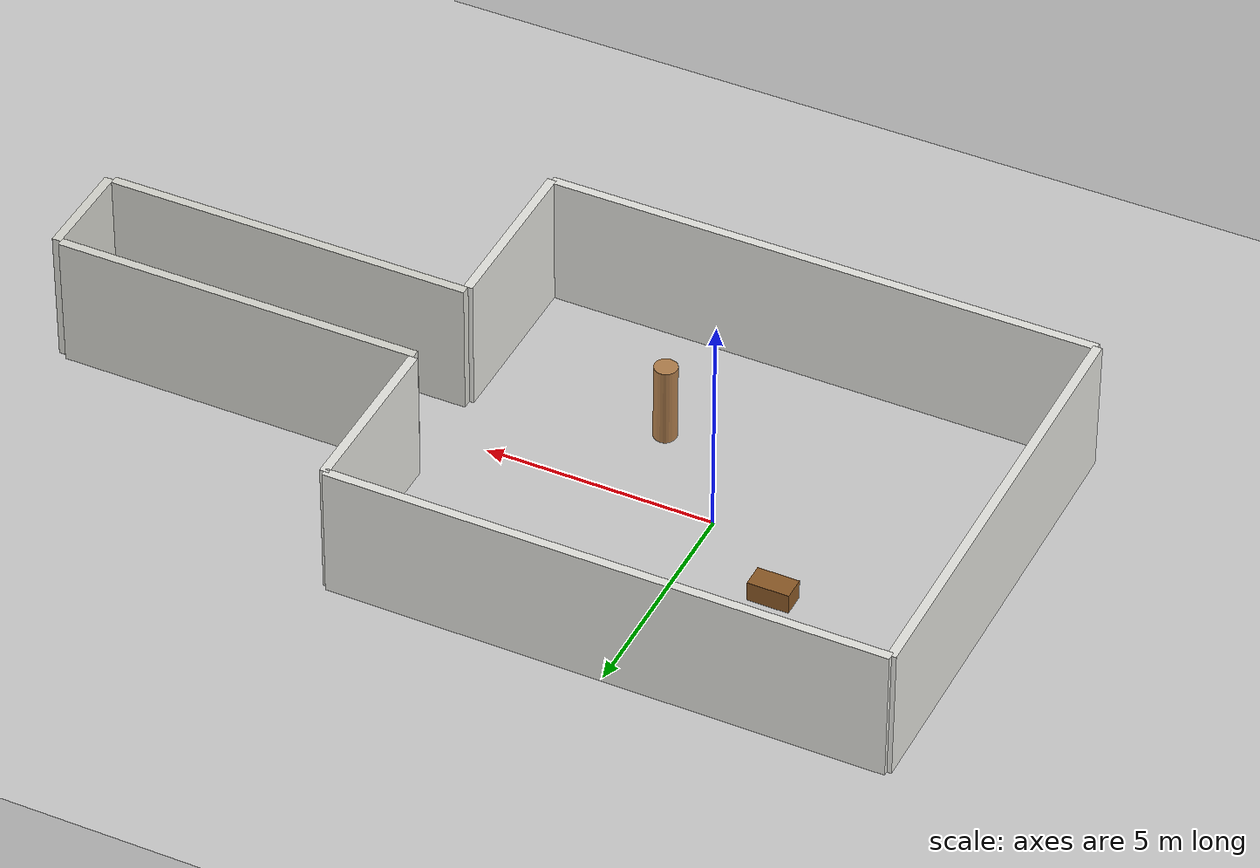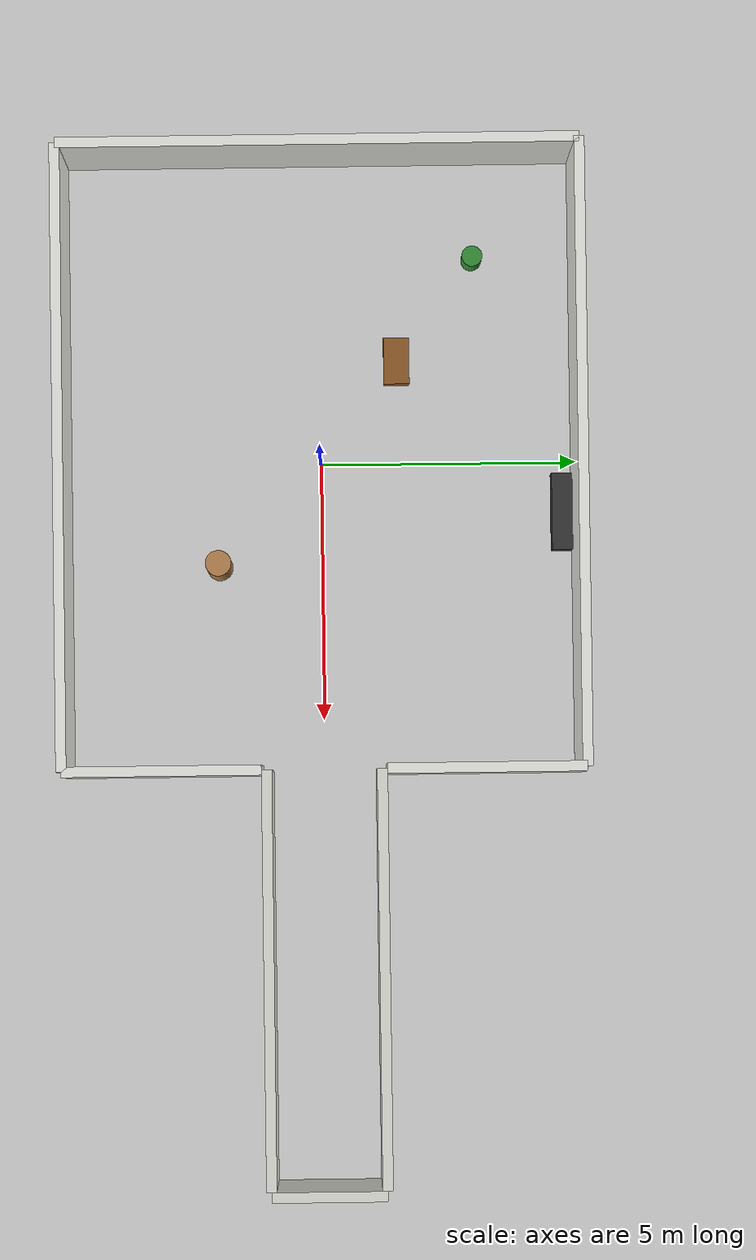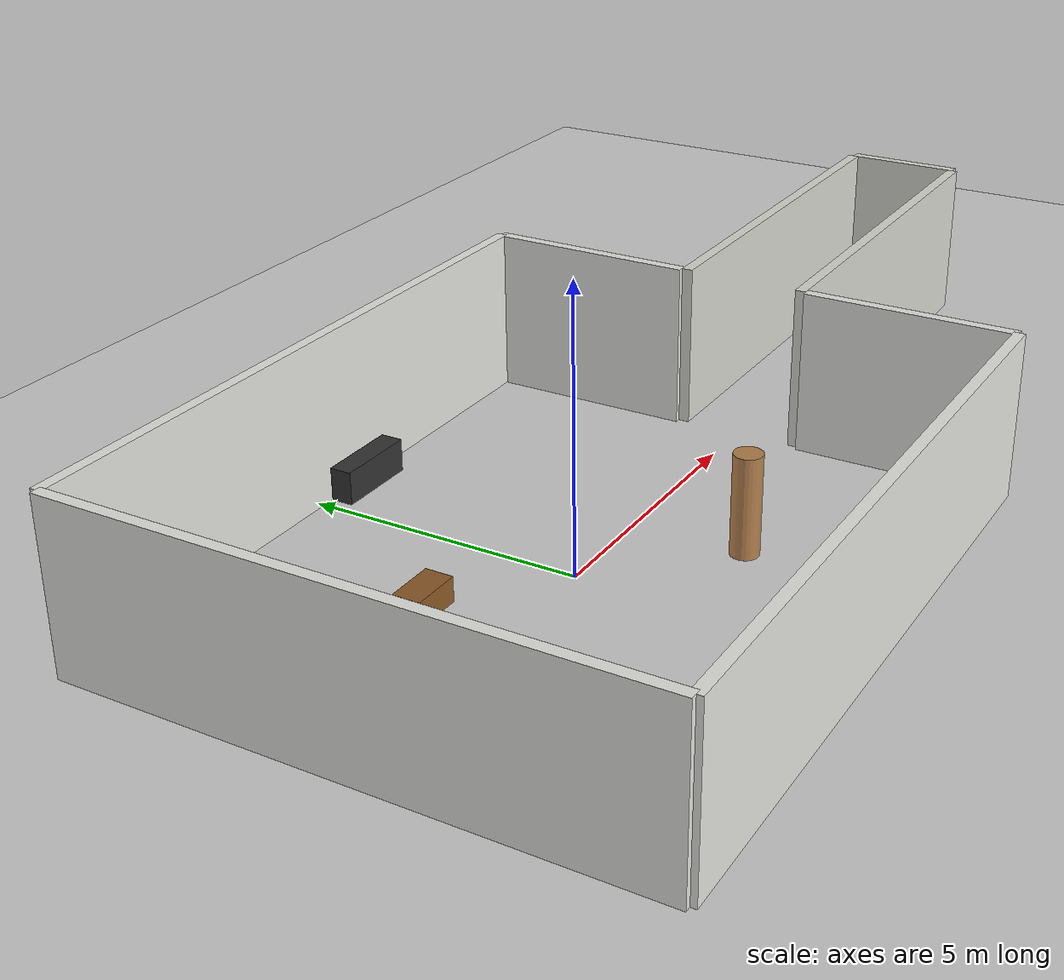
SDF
<?xml version="1.0"?>
<!--
  indoor_nav.world  —  Gazebo Classic 11 (ROS 2 Humble)
  12m × 10m living room + 2m wide hallway, furniture obstacles, one dynamic person
-->
<sdf version="1.6">
  <world name="couchmo_indoor">

    <physics type="ode">
      <max_step_size>0.001</max_step_size>
      <real_time_factor>1.0</real_time_factor>
      <real_time_update_rate>1000</real_time_update_rate>
      <ode>
        <solver>
          <type>quick</type>
          <iters>50</iters>
        </solver>
      </ode>
    </physics>

    <!-- Lighting -->
    <include><uri>model://sun</uri></include>

    <!-- Ground plane -->
    <include><uri>model://ground_plane</uri></include>

    <!-- ── South wall ──────────────────────────────── -->
    <model name="wall_south">
      <static>true</static>
      <pose>0 -5 1.5 0 0 0</pose>
      <link name="link">
        <collision name="col">
          <geometry><box><size>12 0.2 3</size></box></geometry>
        </collision>
        <visual name="vis">
          <geometry><box><size>12 0.2 3</size></box></geometry>
          <material>
            <ambient>0.9 0.9 0.88 1</ambient>
            <diffuse>0.9 0.9 0.88 1</diffuse>
          </material>
        </visual>
      </link>
    </model>

    <!-- ── North wall ──────────────────────────────── -->
    <model name="wall_north">
      <static>true</static>
      <pose>0 5 1.5 0 0 0</pose>
      <link name="link">
        <collision name="col">
          <geometry><box><size>12 0.2 3</size></box></geometry>
        </collision>
        <visual name="vis">
          <geometry><box><size>12 0.2 3</size></box></geometry>
          <material>
            <ambient>0.9 0.9 0.88 1</ambient>
            <diffuse>0.9 0.9 0.88 1</diffuse>
          </material>
        </visual>
      </link>
    </model>

    <!-- ── West wall ───────────────────────────────── -->
    <model name="wall_west">
      <static>true</static>
      <pose>-6 0 1.5 0 0 0</pose>
      <link name="link">
        <collision name="col">
          <geometry><box><size>0.2 10 3</size></box></geometry>
        </collision>
        <visual name="vis">
          <geometry><box><size>0.2 10 3</size></box></geometry>
          <material>
            <ambient>0.9 0.9 0.88 1</ambient>
            <diffuse>0.9 0.9 0.88 1</diffuse>
          </material>
        </visual>
      </link>
    </model>

    <!-- ── East wall (with 1.2m doorway at y=0) ───── -->
    <model name="wall_east_north">
      <static>true</static>
      <pose>6 3.1 1.5 0 0 0</pose>
      <link name="link">
        <collision name="col">
          <geometry><box><size>0.2 3.8 3</size></box></geometry>
        </collision>
        <visual name="vis">
          <geometry><box><size>0.2 3.8 3</size></box></geometry>
          <material>
            <ambient>0.9 0.9 0.88 1</ambient>
            <diffuse>0.9 0.9 0.88 1</diffuse>
          </material>
        </visual>
      </link>
    </model>

    <model name="wall_east_south">
      <static>true</static>
      <pose>6 -3.1 1.5 0 0 0</pose>
      <link name="link">
        <collision name="col">
          <geometry><box><size>0.2 3.8 3</size></box></geometry>
        </collision>
        <visual name="vis">
          <geometry><box><size>0.2 3.8 3</size></box></geometry>
          <material>
            <ambient>0.9 0.9 0.88 1</ambient>
            <diffuse>0.9 0.9 0.88 1</diffuse>
          </material>
        </visual>
      </link>
    </model>

    <!-- ── Hallway ─────────────────────────────────── -->
    <model name="hallway_wall_north">
      <static>true</static>
      <pose>10 1.1 1.5 0 0 0</pose>
      <link name="link">
        <collision name="col">
          <geometry><box><size>8 0.2 3</size></box></geometry>
        </collision>
        <visual name="vis">
          <geometry><box><size>8 0.2 3</size></box></geometry>
          <material>
            <ambient>0.85 0.85 0.82 1</ambient>
            <diffuse>0.85 0.85 0.82 1</diffuse>
          </material>
        </visual>
      </link>
    </model>

    <model name="hallway_wall_south">
      <static>true</static>
      <pose>10 -1.1 1.5 0 0 0</pose>
      <link name="link">
        <collision name="col">
          <geometry><box><size>8 0.2 3</size></box></geometry>
        </collision>
        <visual name="vis">
          <geometry><box><size>8 0.2 3</size></box></geometry>
          <material>
            <ambient>0.85 0.85 0.82 1</ambient>
            <diffuse>0.85 0.85 0.82 1</diffuse>
          </material>
        </visual>
      </link>
    </model>

    <model name="hallway_end_wall">
      <static>true</static>
      <pose>14.1 0 1.5 0 0 0</pose>
      <link name="link">
        <collision name="col">
          <geometry><box><size>0.2 2.2 3</size></box></geometry>
        </collision>
        <visual name="vis">
          <geometry><box><size>0.2 2.2 3</size></box></geometry>
          <material>
            <ambient>0.85 0.85 0.82 1</ambient>
            <diffuse>0.85 0.85 0.82 1</diffuse>
          </material>
        </visual>
      </link>
    </model>

    <!-- ── Furniture obstacles ─────────────────────── -->
    <model name="coffee_table">
      <static>true</static>
      <pose>-2 1.5 0.225 0 0 0</pose>
      <link name="link">
        <collision name="col">
          <geometry><box><size>0.9 0.5 0.45</size></box></geometry>
        </collision>
        <visual name="vis">
          <geometry><box><size>0.9 0.5 0.45</size></box></geometry>
          <material>
            <ambient>0.55 0.35 0.15 1</ambient>
            <diffuse>0.55 0.35 0.15 1</diffuse>
          </material>
        </visual>
      </link>
    </model>

    <model name="tv_stand">
      <static>true</static>
      <pose>1 4.7 0.3 0 0 0</pose>
      <link name="link">
        <collision name="col">
          <geometry><box><size>1.5 0.4 0.6</size></box></geometry>
        </collision>
        <visual name="vis">
          <geometry><box><size>1.5 0.4 0.6</size></box></geometry>
          <material>
            <ambient>0.2 0.2 0.2 1</ambient>
            <diffuse>0.2 0.2 0.2 1</diffuse>
          </material>
        </visual>
      </link>
    </model>

    <model name="plant_pot">
      <static>true</static>
      <pose>-4 3 0.4 0 0 0</pose>
      <link name="link">
        <collision name="col">
          <geometry><cylinder><radius>0.2</radius><length>0.8</length></cylinder></geometry>
        </collision>
        <visual name="vis">
          <geometry><cylinder><radius>0.2</radius><length>0.8</length></cylinder></geometry>
          <material>
            <ambient>0.2 0.55 0.2 1</ambient>
            <diffuse>0.2 0.55 0.2 1</diffuse>
          </material>
        </visual>
      </link>
    </model>

    <!-- Dynamic person obstacle -->
    <model name="person_1">
      <static>false</static>
      <pose>2 -2 0.9 0 0 0</pose>
      <link name="link">
        <inertial>
          <mass>70</mass>
          <inertia><ixx>10</ixx><iyy>10</iyy><izz>2</izz></inertia>
        </inertial>
        <collision name="col">
          <geometry><cylinder><radius>0.25</radius><length>1.8</length></cylinder></geometry>
        </collision>
        <visual name="vis">
          <geometry><cylinder><radius>0.25</radius><length>1.8</length></cylinder></geometry>
          <material>
            <ambient>0.7 0.5 0.3 1</ambient>
            <diffuse>0.7 0.5 0.3 1</diffuse>
          </material>
        </visual>
      </link>
    </model>

  </world>
</sdf>
